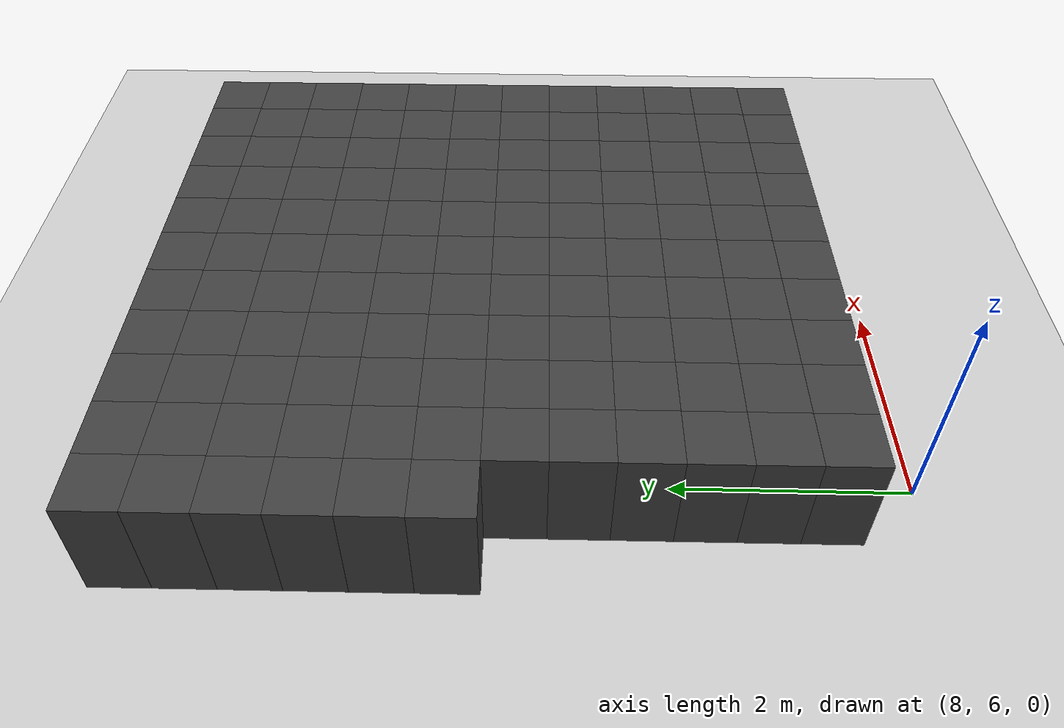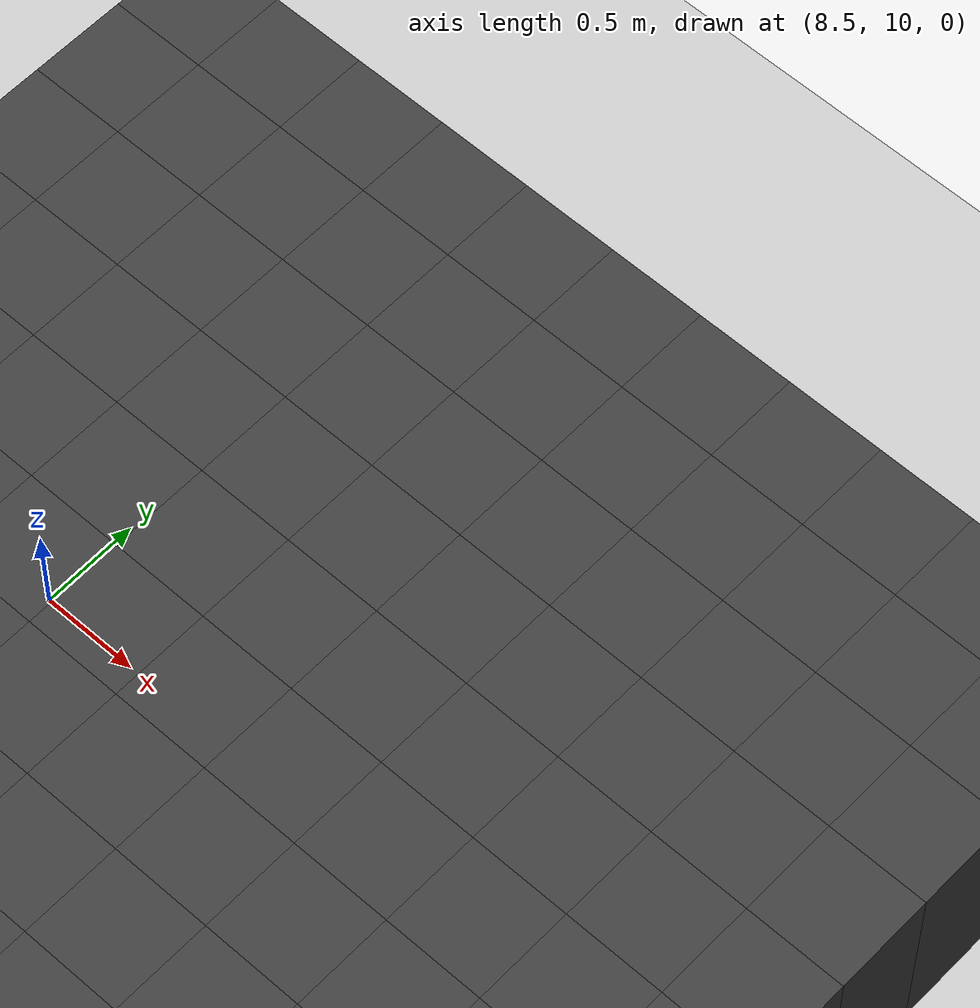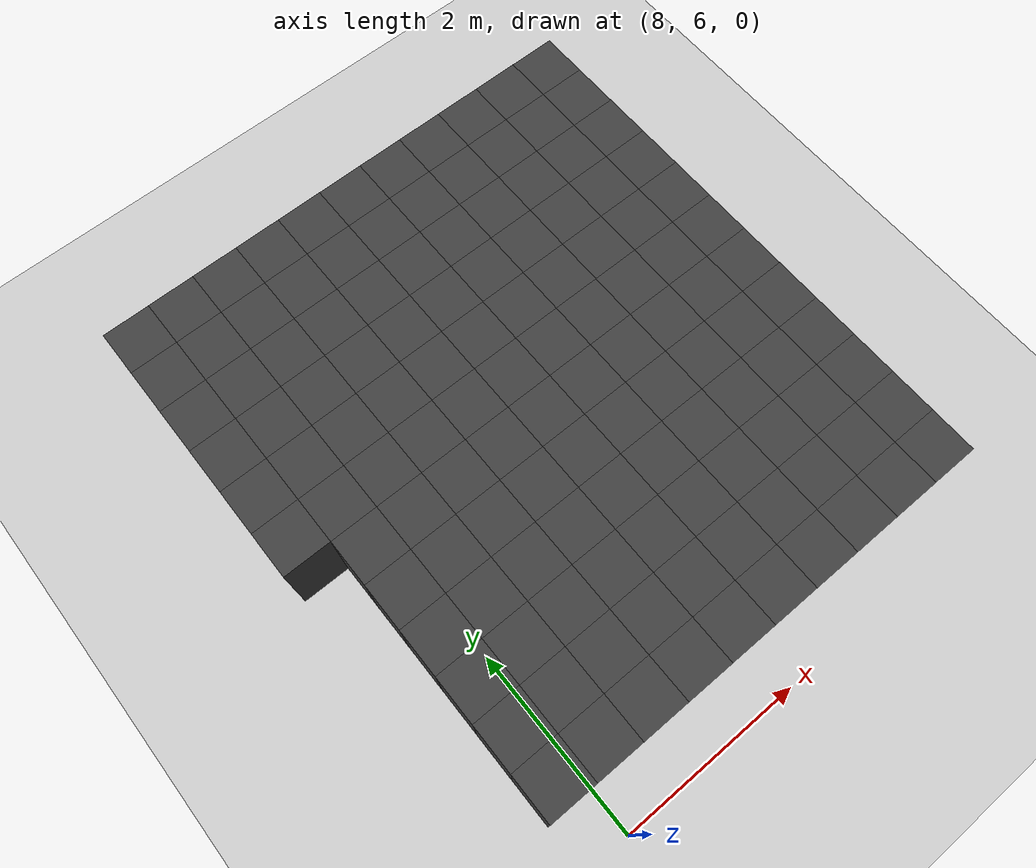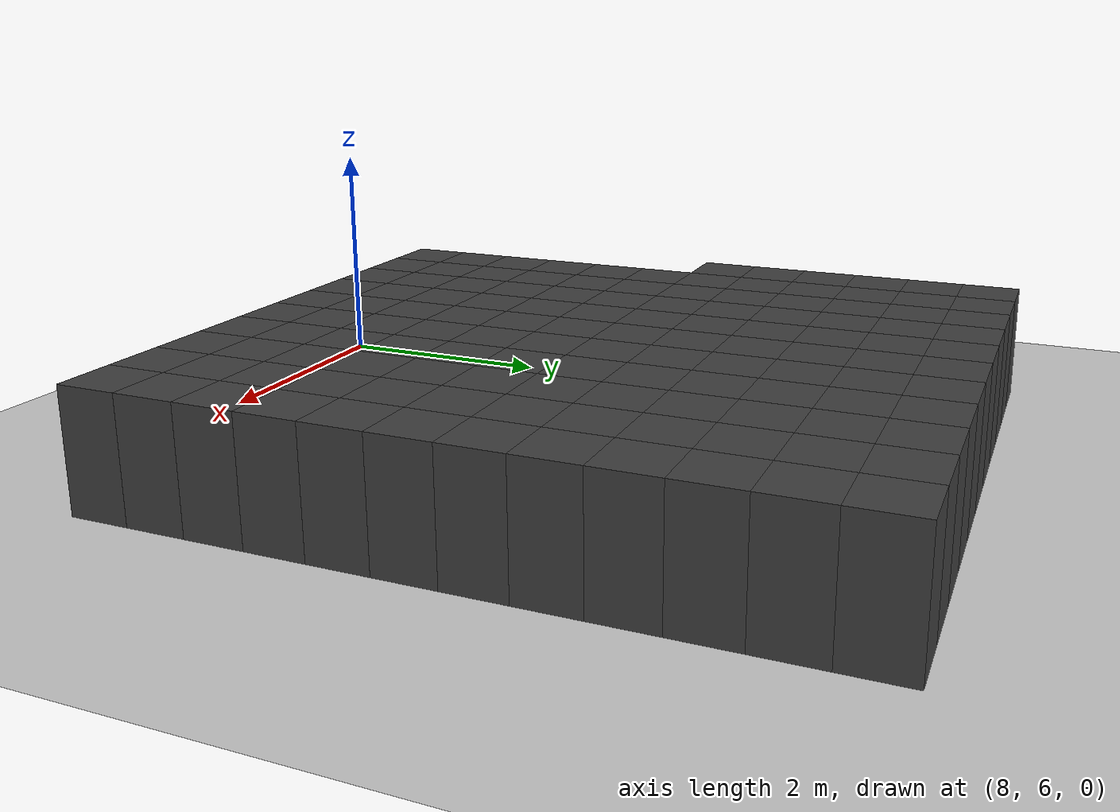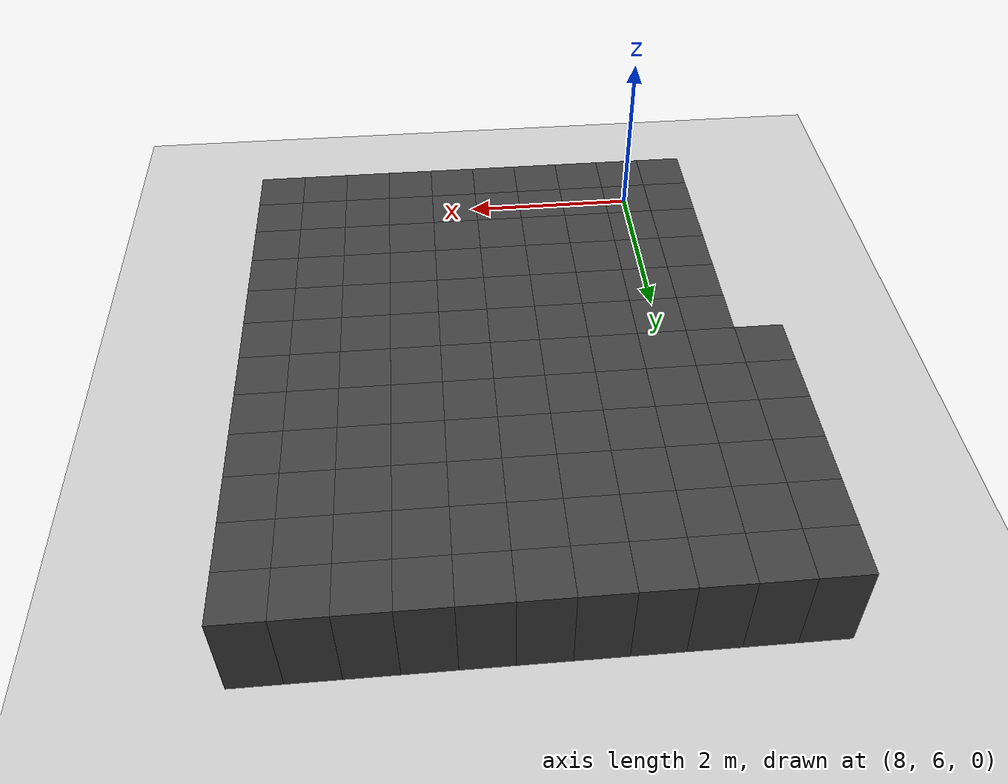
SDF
<sdf version="1.7">
 <world name="map_14495">
  <model name="ground_plane">
   <static>true</static>
   <link name="link">
    <collision name="collision">
     <geometry><plane><normal>0 0 1</normal><size>200 200</size></plane></geometry>
    </collision>
    <visual name="visual">
     <geometry><plane><normal>0 0 1</normal><size>200 200</size></plane></geometry>
     <material><ambient>0.8 0.8 0.8 1</ambient><diffuse>0.8 0.8 0.8 1</diffuse></material>
    </visual>
   </link>
  </model>
  <model name="maze_environment">
   <static>true</static>
   <link name="wall_39">
    <pose>7.250 12.250 0.500 0 0 0</pose>
    <collision name="col"><geometry><box><size>0.5 0.5 1.0</size></box></geometry></collision>
    <visual name="vis">
     <geometry><box><size>0.5 0.5 1.0</size></box></geometry>
     <material><ambient>0.15 0.15 0.15 1</ambient><diffuse>0.25 0.25 0.25 1</diffuse></material>
    </visual>
   </link>
   <link name="wall_40">
    <pose>7.750 12.250 0.500 0 0 0</pose>
    <collision name="col"><geometry><box><size>0.5 0.5 1.0</size></box></geometry></collision>
    <visual name="vis">
     <geometry><box><size>0.5 0.5 1.0</size></box></geometry>
     <material><ambient>0.15 0.15 0.15 1</ambient><diffuse>0.25 0.25 0.25 1</diffuse></material>
    </visual>
   </link>
   <link name="wall_41">
    <pose>8.250 12.250 0.500 0 0 0</pose>
    <collision name="col"><geometry><box><size>0.5 0.5 1.0</size></box></geometry></collision>
    <visual name="vis">
     <geometry><box><size>0.5 0.5 1.0</size></box></geometry>
     <material><ambient>0.15 0.15 0.15 1</ambient><diffuse>0.25 0.25 0.25 1</diffuse></material>
    </visual>
   </link>
   <link name="wall_42">
    <pose>8.750 12.250 0.500 0 0 0</pose>
    <collision name="col"><geometry><box><size>0.5 0.5 1.0</size></box></geometry></collision>
    <visual name="vis">
     <geometry><box><size>0.5 0.5 1.0</size></box></geometry>
     <material><ambient>0.15 0.15 0.15 1</ambient><diffuse>0.25 0.25 0.25 1</diffuse></material>
    </visual>
   </link>
   <link name="wall_43">
    <pose>9.250 12.250 0.500 0 0 0</pose>
    <collision name="col"><geometry><box><size>0.5 0.5 1.0</size></box></geometry></collision>
    <visual name="vis">
     <geometry><box><size>0.5 0.5 1.0</size></box></geometry>
     <material><ambient>0.15 0.15 0.15 1</ambient><diffuse>0.25 0.25 0.25 1</diffuse></material>
    </visual>
   </link>
   <link name="wall_44">
    <pose>9.750 12.250 0.500 0 0 0</pose>
    <collision name="col"><geometry><box><size>0.5 0.5 1.0</size></box></geometry></collision>
    <visual name="vis">
     <geometry><box><size>0.5 0.5 1.0</size></box></geometry>
     <material><ambient>0.15 0.15 0.15 1</ambient><diffuse>0.25 0.25 0.25 1</diffuse></material>
    </visual>
   </link>
   <link name="wall_45">
    <pose>10.250 12.250 0.500 0 0 0</pose>
    <collision name="col"><geometry><box><size>0.5 0.5 1.0</size></box></geometry></collision>
    <visual name="vis">
     <geometry><box><size>0.5 0.5 1.0</size></box></geometry>
     <material><ambient>0.15 0.15 0.15 1</ambient><diffuse>0.25 0.25 0.25 1</diffuse></material>
    </visual>
   </link>
   <link name="wall_46">
    <pose>10.750 12.250 0.500 0 0 0</pose>
    <collision name="col"><geometry><box><size>0.5 0.5 1.0</size></box></geometry></collision>
    <visual name="vis">
     <geometry><box><size>0.5 0.5 1.0</size></box></geometry>
     <material><ambient>0.15 0.15 0.15 1</ambient><diffuse>0.25 0.25 0.25 1</diffuse></material>
    </visual>
   </link>
   <link name="wall_47">
    <pose>11.250 12.250 0.500 0 0 0</pose>
    <collision name="col"><geometry><box><size>0.5 0.5 1.0</size></box></geometry></collision>
    <visual name="vis">
     <geometry><box><size>0.5 0.5 1.0</size></box></geometry>
     <material><ambient>0.15 0.15 0.15 1</ambient><diffuse>0.25 0.25 0.25 1</diffuse></material>
    </visual>
   </link>
   <link name="wall_48">
    <pose>11.750 12.250 0.500 0 0 0</pose>
    <collision name="col"><geometry><box><size>0.5 0.5 1.0</size></box></geometry></collision>
    <visual name="vis">
     <geometry><box><size>0.5 0.5 1.0</size></box></geometry>
     <material><ambient>0.15 0.15 0.15 1</ambient><diffuse>0.25 0.25 0.25 1</diffuse></material>
    </visual>
   </link>
   <link name="wall_49">
    <pose>12.250 12.250 0.500 0 0 0</pose>
    <collision name="col"><geometry><box><size>0.5 0.5 1.0</size></box></geometry></collision>
    <visual name="vis">
     <geometry><box><size>0.5 0.5 1.0</size></box></geometry>
     <material><ambient>0.15 0.15 0.15 1</ambient><diffuse>0.25 0.25 0.25 1</diffuse></material>
    </visual>
   </link>
   <link name="wall_86">
    <pose>7.250 11.750 0.500 0 0 0</pose>
    <collision name="col"><geometry><box><size>0.5 0.5 1.0</size></box></geometry></collision>
    <visual name="vis">
     <geometry><box><size>0.5 0.5 1.0</size></box></geometry>
     <material><ambient>0.15 0.15 0.15 1</ambient><diffuse>0.25 0.25 0.25 1</diffuse></material>
    </visual>
   </link>
   <link name="wall_87">
    <pose>7.750 11.750 0.500 0 0 0</pose>
    <collision name="col"><geometry><box><size>0.5 0.5 1.0</size></box></geometry></collision>
    <visual name="vis">
     <geometry><box><size>0.5 0.5 1.0</size></box></geometry>
     <material><ambient>0.15 0.15 0.15 1</ambient><diffuse>0.25 0.25 0.25 1</diffuse></material>
    </visual>
   </link>
   <link name="wall_88">
    <pose>8.250 11.750 0.500 0 0 0</pose>
    <collision name="col"><geometry><box><size>0.5 0.5 1.0</size></box></geometry></collision>
    <visual name="vis">
     <geometry><box><size>0.5 0.5 1.0</size></box></geometry>
     <material><ambient>0.15 0.15 0.15 1</ambient><diffuse>0.25 0.25 0.25 1</diffuse></material>
    </visual>
   </link>
   <link name="wall_89">
    <pose>8.750 11.750 0.500 0 0 0</pose>
    <collision name="col"><geometry><box><size>0.5 0.5 1.0</size></box></geometry></collision>
    <visual name="vis">
     <geometry><box><size>0.5 0.5 1.0</size></box></geometry>
     <material><ambient>0.15 0.15 0.15 1</ambient><diffuse>0.25 0.25 0.25 1</diffuse></material>
    </visual>
   </link>
   <link name="wall_90">
    <pose>9.250 11.750 0.500 0 0 0</pose>
    <collision name="col"><geometry><box><size>0.5 0.5 1.0</size></box></geometry></collision>
    <visual name="vis">
     <geometry><box><size>0.5 0.5 1.0</size></box></geometry>
     <material><ambient>0.15 0.15 0.15 1</ambient><diffuse>0.25 0.25 0.25 1</diffuse></material>
    </visual>
   </link>
   <link name="wall_91">
    <pose>9.750 11.750 0.500 0 0 0</pose>
    <collision name="col"><geometry><box><size>0.5 0.5 1.0</size></box></geometry></collision>
    <visual name="vis">
     <geometry><box><size>0.5 0.5 1.0</size></box></geometry>
     <material><ambient>0.15 0.15 0.15 1</ambient><diffuse>0.25 0.25 0.25 1</diffuse></material>
    </visual>
   </link>
   <link name="wall_92">
    <pose>10.250 11.750 0.500 0 0 0</pose>
    <collision name="col"><geometry><box><size>0.5 0.5 1.0</size></box></geometry></collision>
    <visual name="vis">
     <geometry><box><size>0.5 0.5 1.0</size></box></geometry>
     <material><ambient>0.15 0.15 0.15 1</ambient><diffuse>0.25 0.25 0.25 1</diffuse></material>
    </visual>
   </link>
   <link name="wall_93">
    <pose>10.750 11.750 0.500 0 0 0</pose>
    <collision name="col"><geometry><box><size>0.5 0.5 1.0</size></box></geometry></collision>
    <visual name="vis">
     <geometry><box><size>0.5 0.5 1.0</size></box></geometry>
     <material><ambient>0.15 0.15 0.15 1</ambient><diffuse>0.25 0.25 0.25 1</diffuse></material>
    </visual>
   </link>
   <link name="wall_94">
    <pose>11.250 11.750 0.500 0 0 0</pose>
    <collision name="col"><geometry><box><size>0.5 0.5 1.0</size></box></geometry></collision>
    <visual name="vis">
     <geometry><box><size>0.5 0.5 1.0</size></box></geometry>
     <material><ambient>0.15 0.15 0.15 1</ambient><diffuse>0.25 0.25 0.25 1</diffuse></material>
    </visual>
   </link>
   <link name="wall_95">
    <pose>11.750 11.750 0.500 0 0 0</pose>
    <collision name="col"><geometry><box><size>0.5 0.5 1.0</size></box></geometry></collision>
    <visual name="vis">
     <geometry><box><size>0.5 0.5 1.0</size></box></geometry>
     <material><ambient>0.15 0.15 0.15 1</ambient><diffuse>0.25 0.25 0.25 1</diffuse></material>
    </visual>
   </link>
   <link name="wall_96">
    <pose>12.250 11.750 0.500 0 0 0</pose>
    <collision name="col"><geometry><box><size>0.5 0.5 1.0</size></box></geometry></collision>
    <visual name="vis">
     <geometry><box><size>0.5 0.5 1.0</size></box></geometry>
     <material><ambient>0.15 0.15 0.15 1</ambient><diffuse>0.25 0.25 0.25 1</diffuse></material>
    </visual>
   </link>
   <link name="wall_133">
    <pose>7.250 11.250 0.500 0 0 0</pose>
    <collision name="col"><geometry><box><size>0.5 0.5 1.0</size></box></geometry></collision>
    <visual name="vis">
     <geometry><box><size>0.5 0.5 1.0</size></box></geometry>
     <material><ambient>0.15 0.15 0.15 1</ambient><diffuse>0.25 0.25 0.25 1</diffuse></material>
    </visual>
   </link>
   <link name="wall_134">
    <pose>7.750 11.250 0.500 0 0 0</pose>
    <collision name="col"><geometry><box><size>0.5 0.5 1.0</size></box></geometry></collision>
    <visual name="vis">
     <geometry><box><size>0.5 0.5 1.0</size></box></geometry>
     <material><ambient>0.15 0.15 0.15 1</ambient><diffuse>0.25 0.25 0.25 1</diffuse></material>
    </visual>
   </link>
   <link name="wall_135">
    <pose>8.250 11.250 0.500 0 0 0</pose>
    <collision name="col"><geometry><box><size>0.5 0.5 1.0</size></box></geometry></collision>
    <visual name="vis">
     <geometry><box><size>0.5 0.5 1.0</size></box></geometry>
     <material><ambient>0.15 0.15 0.15 1</ambient><diffuse>0.25 0.25 0.25 1</diffuse></material>
    </visual>
   </link>
   <link name="wall_136">
    <pose>8.750 11.250 0.500 0 0 0</pose>
    <collision name="col"><geometry><box><size>0.5 0.5 1.0</size></box></geometry></collision>
    <visual name="vis">
     <geometry><box><size>0.5 0.5 1.0</size></box></geometry>
     <material><ambient>0.15 0.15 0.15 1</ambient><diffuse>0.25 0.25 0.25 1</diffuse></material>
    </visual>
   </link>
   <link name="wall_137">
    <pose>9.250 11.250 0.500 0 0 0</pose>
    <collision name="col"><geometry><box><size>0.5 0.5 1.0</size></box></geometry></collision>
    <visual name="vis">
     <geometry><box><size>0.5 0.5 1.0</size></box></geometry>
     <material><ambient>0.15 0.15 0.15 1</ambient><diffuse>0.25 0.25 0.25 1</diffuse></material>
    </visual>
   </link>
   <link name="wall_138">
    <pose>9.750 11.250 0.500 0 0 0</pose>
    <collision name="col"><geometry><box><size>0.5 0.5 1.0</size></box></geometry></collision>
    <visual name="vis">
     <geometry><box><size>0.5 0.5 1.0</size></box></geometry>
     <material><ambient>0.15 0.15 0.15 1</ambient><diffuse>0.25 0.25 0.25 1</diffuse></material>
    </visual>
   </link>
   <link name="wall_139">
    <pose>10.250 11.250 0.500 0 0 0</pose>
    <collision name="col"><geometry><box><size>0.5 0.5 1.0</size></box></geometry></collision>
    <visual name="vis">
     <geometry><box><size>0.5 0.5 1.0</size></box></geometry>
     <material><ambient>0.15 0.15 0.15 1</ambient><diffuse>0.25 0.25 0.25 1</diffuse></material>
    </visual>
   </link>
   <link name="wall_140">
    <pose>10.750 11.250 0.500 0 0 0</pose>
    <collision name="col"><geometry><box><size>0.5 0.5 1.0</size></box></geometry></collision>
    <visual name="vis">
     <geometry><box><size>0.5 0.5 1.0</size></box></geometry>
     <material><ambient>0.15 0.15 0.15 1</ambient><diffuse>0.25 0.25 0.25 1</diffuse></material>
    </visual>
   </link>
   <link name="wall_141">
    <pose>11.250 11.250 0.500 0 0 0</pose>
    <collision name="col"><geometry><box><size>0.5 0.5 1.0</size></box></geometry></collision>
    <visual name="vis">
     <geometry><box><size>0.5 0.5 1.0</size></box></geometry>
     <material><ambient>0.15 0.15 0.15 1</ambient><diffuse>0.25 0.25 0.25 1</diffuse></material>
    </visual>
   </link>
   <link name="wall_142">
    <pose>11.750 11.250 0.500 0 0 0</pose>
    <collision name="col"><geometry><box><size>0.5 0.5 1.0</size></box></geometry></collision>
    <visual name="vis">
     <geometry><box><size>0.5 0.5 1.0</size></box></geometry>
     <material><ambient>0.15 0.15 0.15 1</ambient><diffuse>0.25 0.25 0.25 1</diffuse></material>
    </visual>
   </link>
   <link name="wall_143">
    <pose>12.250 11.250 0.500 0 0 0</pose>
    <collision name="col"><geometry><box><size>0.5 0.5 1.0</size></box></geometry></collision>
    <visual name="vis">
     <geometry><box><size>0.5 0.5 1.0</size></box></geometry>
     <material><ambient>0.15 0.15 0.15 1</ambient><diffuse>0.25 0.25 0.25 1</diffuse></material>
    </visual>
   </link>
   <link name="wall_172">
    <pose>7.250 10.750 0.500 0 0 0</pose>
    <collision name="col"><geometry><box><size>0.5 0.5 1.0</size></box></geometry></collision>
    <visual name="vis">
     <geometry><box><size>0.5 0.5 1.0</size></box></geometry>
     <material><ambient>0.15 0.15 0.15 1</ambient><diffuse>0.25 0.25 0.25 1</diffuse></material>
    </visual>
   </link>
   <link name="wall_173">
    <pose>7.750 10.750 0.500 0 0 0</pose>
    <collision name="col"><geometry><box><size>0.5 0.5 1.0</size></box></geometry></collision>
    <visual name="vis">
     <geometry><box><size>0.5 0.5 1.0</size></box></geometry>
     <material><ambient>0.15 0.15 0.15 1</ambient><diffuse>0.25 0.25 0.25 1</diffuse></material>
    </visual>
   </link>
   <link name="wall_174">
    <pose>8.250 10.750 0.500 0 0 0</pose>
    <collision name="col"><geometry><box><size>0.5 0.5 1.0</size></box></geometry></collision>
    <visual name="vis">
     <geometry><box><size>0.5 0.5 1.0</size></box></geometry>
     <material><ambient>0.15 0.15 0.15 1</ambient><diffuse>0.25 0.25 0.25 1</diffuse></material>
    </visual>
   </link>
   <link name="wall_175">
    <pose>8.750 10.750 0.500 0 0 0</pose>
    <collision name="col"><geometry><box><size>0.5 0.5 1.0</size></box></geometry></collision>
    <visual name="vis">
     <geometry><box><size>0.5 0.5 1.0</size></box></geometry>
     <material><ambient>0.15 0.15 0.15 1</ambient><diffuse>0.25 0.25 0.25 1</diffuse></material>
    </visual>
   </link>
   <link name="wall_176">
    <pose>9.250 10.750 0.500 0 0 0</pose>
    <collision name="col"><geometry><box><size>0.5 0.5 1.0</size></box></geometry></collision>
    <visual name="vis">
     <geometry><box><size>0.5 0.5 1.0</size></box></geometry>
     <material><ambient>0.15 0.15 0.15 1</ambient><diffuse>0.25 0.25 0.25 1</diffuse></material>
    </visual>
   </link>
   <link name="wall_177">
    <pose>9.750 10.750 0.500 0 0 0</pose>
    <collision name="col"><geometry><box><size>0.5 0.5 1.0</size></box></geometry></collision>
    <visual name="vis">
     <geometry><box><size>0.5 0.5 1.0</size></box></geometry>
     <material><ambient>0.15 0.15 0.15 1</ambient><diffuse>0.25 0.25 0.25 1</diffuse></material>
    </visual>
   </link>
   <link name="wall_178">
    <pose>10.250 10.750 0.500 0 0 0</pose>
    <collision name="col"><geometry><box><size>0.5 0.5 1.0</size></box></geometry></collision>
    <visual name="vis">
     <geometry><box><size>0.5 0.5 1.0</size></box></geometry>
     <material><ambient>0.15 0.15 0.15 1</ambient><diffuse>0.25 0.25 0.25 1</diffuse></material>
    </visual>
   </link>
   <link name="wall_179">
    <pose>10.750 10.750 0.500 0 0 0</pose>
    <collision name="col"><geometry><box><size>0.5 0.5 1.0</size></box></geometry></collision>
    <visual name="vis">
     <geometry><box><size>0.5 0.5 1.0</size></box></geometry>
     <material><ambient>0.15 0.15 0.15 1</ambient><diffuse>0.25 0.25 0.25 1</diffuse></material>
    </visual>
   </link>
   <link name="wall_180">
    <pose>11.250 10.750 0.500 0 0 0</pose>
    <collision name="col"><geometry><box><size>0.5 0.5 1.0</size></box></geometry></collision>
    <visual name="vis">
     <geometry><box><size>0.5 0.5 1.0</size></box></geometry>
     <material><ambient>0.15 0.15 0.15 1</ambient><diffuse>0.25 0.25 0.25 1</diffuse></material>
    </visual>
   </link>
   <link name="wall_181">
    <pose>11.750 10.750 0.500 0 0 0</pose>
    <collision name="col"><geometry><box><size>0.5 0.5 1.0</size></box></geometry></collision>
    <visual name="vis">
     <geometry><box><size>0.5 0.5 1.0</size></box></geometry>
     <material><ambient>0.15 0.15 0.15 1</ambient><diffuse>0.25 0.25 0.25 1</diffuse></material>
    </visual>
   </link>
   <link name="wall_182">
    <pose>12.250 10.750 0.500 0 0 0</pose>
    <collision name="col"><geometry><box><size>0.5 0.5 1.0</size></box></geometry></collision>
    <visual name="vis">
     <geometry><box><size>0.5 0.5 1.0</size></box></geometry>
     <material><ambient>0.15 0.15 0.15 1</ambient><diffuse>0.25 0.25 0.25 1</diffuse></material>
    </visual>
   </link>
   <link name="wall_213">
    <pose>7.250 10.250 0.500 0 0 0</pose>
    <collision name="col"><geometry><box><size>0.5 0.5 1.0</size></box></geometry></collision>
    <visual name="vis">
     <geometry><box><size>0.5 0.5 1.0</size></box></geometry>
     <material><ambient>0.15 0.15 0.15 1</ambient><diffuse>0.25 0.25 0.25 1</diffuse></material>
    </visual>
   </link>
   <link name="wall_214">
    <pose>7.750 10.250 0.500 0 0 0</pose>
    <collision name="col"><geometry><box><size>0.5 0.5 1.0</size></box></geometry></collision>
    <visual name="vis">
     <geometry><box><size>0.5 0.5 1.0</size></box></geometry>
     <material><ambient>0.15 0.15 0.15 1</ambient><diffuse>0.25 0.25 0.25 1</diffuse></material>
    </visual>
   </link>
   <link name="wall_215">
    <pose>8.250 10.250 0.500 0 0 0</pose>
    <collision name="col"><geometry><box><size>0.5 0.5 1.0</size></box></geometry></collision>
    <visual name="vis">
     <geometry><box><size>0.5 0.5 1.0</size></box></geometry>
     <material><ambient>0.15 0.15 0.15 1</ambient><diffuse>0.25 0.25 0.25 1</diffuse></material>
    </visual>
   </link>
   <link name="wall_216">
    <pose>8.750 10.250 0.500 0 0 0</pose>
    <collision name="col"><geometry><box><size>0.5 0.5 1.0</size></box></geometry></collision>
    <visual name="vis">
     <geometry><box><size>0.5 0.5 1.0</size></box></geometry>
     <material><ambient>0.15 0.15 0.15 1</ambient><diffuse>0.25 0.25 0.25 1</diffuse></material>
    </visual>
   </link>
   <link name="wall_217">
    <pose>9.250 10.250 0.500 0 0 0</pose>
    <collision name="col"><geometry><box><size>0.5 0.5 1.0</size></box></geometry></collision>
    <visual name="vis">
     <geometry><box><size>0.5 0.5 1.0</size></box></geometry>
     <material><ambient>0.15 0.15 0.15 1</ambient><diffuse>0.25 0.25 0.25 1</diffuse></material>
    </visual>
   </link>
   <link name="wall_218">
    <pose>9.750 10.250 0.500 0 0 0</pose>
    <collision name="col"><geometry><box><size>0.5 0.5 1.0</size></box></geometry></collision>
    <visual name="vis">
     <geometry><box><size>0.5 0.5 1.0</size></box></geometry>
     <material><ambient>0.15 0.15 0.15 1</ambient><diffuse>0.25 0.25 0.25 1</diffuse></material>
    </visual>
   </link>
   <link name="wall_219">
    <pose>10.250 10.250 0.500 0 0 0</pose>
    <collision name="col"><geometry><box><size>0.5 0.5 1.0</size></box></geometry></collision>
    <visual name="vis">
     <geometry><box><size>0.5 0.5 1.0</size></box></geometry>
     <material><ambient>0.15 0.15 0.15 1</ambient><diffuse>0.25 0.25 0.25 1</diffuse></material>
    </visual>
   </link>
   <link name="wall_220">
    <pose>10.750 10.250 0.500 0 0 0</pose>
    <collision name="col"><geometry><box><size>0.5 0.5 1.0</size></box></geometry></collision>
    <visual name="vis">
     <geometry><box><size>0.5 0.5 1.0</size></box></geometry>
     <material><ambient>0.15 0.15 0.15 1</ambient><diffuse>0.25 0.25 0.25 1</diffuse></material>
    </visual>
   </link>
   <link name="wall_221">
    <pose>11.250 10.250 0.500 0 0 0</pose>
    <collision name="col"><geometry><box><size>0.5 0.5 1.0</size></box></geometry></collision>
    <visual name="vis">
     <geometry><box><size>0.5 0.5 1.0</size></box></geometry>
     <material><ambient>0.15 0.15 0.15 1</ambient><diffuse>0.25 0.25 0.25 1</diffuse></material>
    </visual>
   </link>
   <link name="wall_222">
    <pose>11.750 10.250 0.500 0 0 0</pose>
    <collision name="col"><geometry><box><size>0.5 0.5 1.0</size></box></geometry></collision>
    <visual name="vis">
     <geometry><box><size>0.5 0.5 1.0</size></box></geometry>
     <material><ambient>0.15 0.15 0.15 1</ambient><diffuse>0.25 0.25 0.25 1</diffuse></material>
    </visual>
   </link>
   <link name="wall_223">
    <pose>12.250 10.250 0.500 0 0 0</pose>
    <collision name="col"><geometry><box><size>0.5 0.5 1.0</size></box></geometry></collision>
    <visual name="vis">
     <geometry><box><size>0.5 0.5 1.0</size></box></geometry>
     <material><ambient>0.15 0.15 0.15 1</ambient><diffuse>0.25 0.25 0.25 1</diffuse></material>
    </visual>
   </link>
   <link name="wall_254">
    <pose>7.250 9.750 0.500 0 0 0</pose>
    <collision name="col"><geometry><box><size>0.5 0.5 1.0</size></box></geometry></collision>
    <visual name="vis">
     <geometry><box><size>0.5 0.5 1.0</size></box></geometry>
     <material><ambient>0.15 0.15 0.15 1</ambient><diffuse>0.25 0.25 0.25 1</diffuse></material>
    </visual>
   </link>
   <link name="wall_255">
    <pose>7.750 9.750 0.500 0 0 0</pose>
    <collision name="col"><geometry><box><size>0.5 0.5 1.0</size></box></geometry></collision>
    <visual name="vis">
     <geometry><box><size>0.5 0.5 1.0</size></box></geometry>
     <material><ambient>0.15 0.15 0.15 1</ambient><diffuse>0.25 0.25 0.25 1</diffuse></material>
    </visual>
   </link>
   <link name="wall_256">
    <pose>8.250 9.750 0.500 0 0 0</pose>
    <collision name="col"><geometry><box><size>0.5 0.5 1.0</size></box></geometry></collision>
    <visual name="vis">
     <geometry><box><size>0.5 0.5 1.0</size></box></geometry>
     <material><ambient>0.15 0.15 0.15 1</ambient><diffuse>0.25 0.25 0.25 1</diffuse></material>
    </visual>
   </link>
   <link name="wall_257">
    <pose>8.750 9.750 0.500 0 0 0</pose>
    <collision name="col"><geometry><box><size>0.5 0.5 1.0</size></box></geometry></collision>
    <visual name="vis">
     <geometry><box><size>0.5 0.5 1.0</size></box></geometry>
     <material><ambient>0.15 0.15 0.15 1</ambient><diffuse>0.25 0.25 0.25 1</diffuse></material>
    </visual>
   </link>
   <link name="wall_258">
    <pose>9.250 9.750 0.500 0 0 0</pose>
    <collision name="col"><geometry><box><size>0.5 0.5 1.0</size></box></geometry></collision>
    <visual name="vis">
     <geometry><box><size>0.5 0.5 1.0</size></box></geometry>
     <material><ambient>0.15 0.15 0.15 1</ambient><diffuse>0.25 0.25 0.25 1</diffuse></material>
    </visual>
   </link>
   <link name="wall_259">
    <pose>9.750 9.750 0.500 0 0 0</pose>
    <collision name="col"><geometry><box><size>0.5 0.5 1.0</size></box></geometry></collision>
    <visual name="vis">
     <geometry><box><size>0.5 0.5 1.0</size></box></geometry>
     <material><ambient>0.15 0.15 0.15 1</ambient><diffuse>0.25 0.25 0.25 1</diffuse></material>
    </visual>
   </link>
   <link name="wall_260">
    <pose>10.250 9.750 0.500 0 0 0</pose>
    <collision name="col"><geometry><box><size>0.5 0.5 1.0</size></box></geometry></collision>
    <visual name="vis">
     <geometry><box><size>0.5 0.5 1.0</size></box></geometry>
     <material><ambient>0.15 0.15 0.15 1</ambient><diffuse>0.25 0.25 0.25 1</diffuse></material>
    </visual>
   </link>
   <link name="wall_261">
    <pose>10.750 9.750 0.500 0 0 0</pose>
    <collision name="col"><geometry><box><size>0.5 0.5 1.0</size></box></geometry></collision>
    <visual name="vis">
     <geometry><box><size>0.5 0.5 1.0</size></box></geometry>
     <material><ambient>0.15 0.15 0.15 1</ambient><diffuse>0.25 0.25 0.25 1</diffuse></material>
    </visual>
   </link>
   <link name="wall_262">
    <pose>11.250 9.750 0.500 0 0 0</pose>
    <collision name="col"><geometry><box><size>0.5 0.5 1.0</size></box></geometry></collision>
    <visual name="vis">
     <geometry><box><size>0.5 0.5 1.0</size></box></geometry>
     <material><ambient>0.15 0.15 0.15 1</ambient><diffuse>0.25 0.25 0.25 1</diffuse></material>
    </visual>
   </link>
   <link name="wall_263">
    <pose>11.750 9.750 0.500 0 0 0</pose>
    <collision name="col"><geometry><box><size>0.5 0.5 1.0</size></box></geometry></collision>
    <visual name="vis">
     <geometry><box><size>0.5 0.5 1.0</size></box></geometry>
     <material><ambient>0.15 0.15 0.15 1</ambient><diffuse>0.25 0.25 0.25 1</diffuse></material>
    </visual>
   </link>
   <link name="wall_264">
    <pose>12.250 9.750 0.500 0 0 0</pose>
    <collision name="col"><geometry><box><size>0.5 0.5 1.0</size></box></geometry></collision>
    <visual name="vis">
     <geometry><box><size>0.5 0.5 1.0</size></box></geometry>
     <material><ambient>0.15 0.15 0.15 1</ambient><diffuse>0.25 0.25 0.25 1</diffuse></material>
    </visual>
   </link>
   <link name="wall_292">
    <pose>7.750 9.250 0.500 0 0 0</pose>
    <collision name="col"><geometry><box><size>0.5 0.5 1.0</size></box></geometry></collision>
    <visual name="vis">
     <geometry><box><size>0.5 0.5 1.0</size></box></geometry>
     <material><ambient>0.15 0.15 0.15 1</ambient><diffuse>0.25 0.25 0.25 1</diffuse></material>
    </visual>
   </link>
   <link name="wall_293">
    <pose>8.250 9.250 0.500 0 0 0</pose>
    <collision name="col"><geometry><box><size>0.5 0.5 1.0</size></box></geometry></collision>
    <visual name="vis">
     <geometry><box><size>0.5 0.5 1.0</size></box></geometry>
     <material><ambient>0.15 0.15 0.15 1</ambient><diffuse>0.25 0.25 0.25 1</diffuse></material>
    </visual>
   </link>
   <link name="wall_294">
    <pose>8.750 9.250 0.500 0 0 0</pose>
    <collision name="col"><geometry><box><size>0.5 0.5 1.0</size></box></geometry></collision>
    <visual name="vis">
     <geometry><box><size>0.5 0.5 1.0</size></box></geometry>
     <material><ambient>0.15 0.15 0.15 1</ambient><diffuse>0.25 0.25 0.25 1</diffuse></material>
    </visual>
   </link>
   <link name="wall_295">
    <pose>9.250 9.250 0.500 0 0 0</pose>
    <collision name="col"><geometry><box><size>0.5 0.5 1.0</size></box></geometry></collision>
    <visual name="vis">
     <geometry><box><size>0.5 0.5 1.0</size></box></geometry>
     <material><ambient>0.15 0.15 0.15 1</ambient><diffuse>0.25 0.25 0.25 1</diffuse></material>
    </visual>
   </link>
   <link name="wall_296">
    <pose>9.750 9.250 0.500 0 0 0</pose>
    <collision name="col"><geometry><box><size>0.5 0.5 1.0</size></box></geometry></collision>
    <visual name="vis">
     <geometry><box><size>0.5 0.5 1.0</size></box></geometry>
     <material><ambient>0.15 0.15 0.15 1</ambient><diffuse>0.25 0.25 0.25 1</diffuse></material>
    </visual>
   </link>
   <link name="wall_297">
    <pose>10.250 9.250 0.500 0 0 0</pose>
    <collision name="col"><geometry><box><size>0.5 0.5 1.0</size></box></geometry></collision>
    <visual name="vis">
     <geometry><box><size>0.5 0.5 1.0</size></box></geometry>
     <material><ambient>0.15 0.15 0.15 1</ambient><diffuse>0.25 0.25 0.25 1</diffuse></material>
    </visual>
   </link>
   <link name="wall_298">
    <pose>10.750 9.250 0.500 0 0 0</pose>
    <collision name="col"><geometry><box><size>0.5 0.5 1.0</size></box></geometry></collision>
    <visual name="vis">
     <geometry><box><size>0.5 0.5 1.0</size></box></geometry>
     <material><ambient>0.15 0.15 0.15 1</ambient><diffuse>0.25 0.25 0.25 1</diffuse></material>
    </visual>
   </link>
   <link name="wall_299">
    <pose>11.250 9.250 0.500 0 0 0</pose>
    <collision name="col"><geometry><box><size>0.5 0.5 1.0</size></box></geometry></collision>
    <visual name="vis">
     <geometry><box><size>0.5 0.5 1.0</size></box></geometry>
     <material><ambient>0.15 0.15 0.15 1</ambient><diffuse>0.25 0.25 0.25 1</diffuse></material>
    </visual>
   </link>
   <link name="wall_300">
    <pose>11.750 9.250 0.500 0 0 0</pose>
    <collision name="col"><geometry><box><size>0.5 0.5 1.0</size></box></geometry></collision>
    <visual name="vis">
     <geometry><box><size>0.5 0.5 1.0</size></box></geometry>
     <material><ambient>0.15 0.15 0.15 1</ambient><diffuse>0.25 0.25 0.25 1</diffuse></material>
    </visual>
   </link>
   <link name="wall_301">
    <pose>12.250 9.250 0.500 0 0 0</pose>
    <collision name="col"><geometry><box><size>0.5 0.5 1.0</size></box></geometry></collision>
    <visual name="vis">
     <geometry><box><size>0.5 0.5 1.0</size></box></geometry>
     <material><ambient>0.15 0.15 0.15 1</ambient><diffuse>0.25 0.25 0.25 1</diffuse></material>
    </visual>
   </link>
   <link name="wall_330">
    <pose>7.750 8.750 0.500 0 0 0</pose>
    <collision name="col"><geometry><box><size>0.5 0.5 1.0</size></box></geometry></collision>
    <visual name="vis">
     <geometry><box><size>0.5 0.5 1.0</size></box></geometry>
     <material><ambient>0.15 0.15 0.15 1</ambient><diffuse>0.25 0.25 0.25 1</diffuse></material>
    </visual>
   </link>
   <link name="wall_331">
    <pose>8.250 8.750 0.500 0 0 0</pose>
    <collision name="col"><geometry><box><size>0.5 0.5 1.0</size></box></geometry></collision>
    <visual name="vis">
     <geometry><box><size>0.5 0.5 1.0</size></box></geometry>
     <material><ambient>0.15 0.15 0.15 1</ambient><diffuse>0.25 0.25 0.25 1</diffuse></material>
    </visual>
   </link>
   <link name="wall_332">
    <pose>8.750 8.750 0.500 0 0 0</pose>
    <collision name="col"><geometry><box><size>0.5 0.5 1.0</size></box></geometry></collision>
    <visual name="vis">
     <geometry><box><size>0.5 0.5 1.0</size></box></geometry>
     <material><ambient>0.15 0.15 0.15 1</ambient><diffuse>0.25 0.25 0.25 1</diffuse></material>
    </visual>
   </link>
   <link name="wall_333">
    <pose>9.250 8.750 0.500 0 0 0</pose>
    <collision name="col"><geometry><box><size>0.5 0.5 1.0</size></box></geometry></collision>
    <visual name="vis">
     <geometry><box><size>0.5 0.5 1.0</size></box></geometry>
     <material><ambient>0.15 0.15 0.15 1</ambient><diffuse>0.25 0.25 0.25 1</diffuse></material>
    </visual>
   </link>
   <link name="wall_334">
    <pose>9.750 8.750 0.500 0 0 0</pose>
    <collision name="col"><geometry><box><size>0.5 0.5 1.0</size></box></geometry></collision>
    <visual name="vis">
     <geometry><box><size>0.5 0.5 1.0</size></box></geometry>
     <material><ambient>0.15 0.15 0.15 1</ambient><diffuse>0.25 0.25 0.25 1</diffuse></material>
    </visual>
   </link>
   <link name="wall_335">
    <pose>10.250 8.750 0.500 0 0 0</pose>
    <collision name="col"><geometry><box><size>0.5 0.5 1.0</size></box></geometry></collision>
    <visual name="vis">
     <geometry><box><size>0.5 0.5 1.0</size></box></geometry>
     <material><ambient>0.15 0.15 0.15 1</ambient><diffuse>0.25 0.25 0.25 1</diffuse></material>
    </visual>
   </link>
   <link name="wall_336">
    <pose>10.750 8.750 0.500 0 0 0</pose>
    <collision name="col"><geometry><box><size>0.5 0.5 1.0</size></box></geometry></collision>
    <visual name="vis">
     <geometry><box><size>0.5 0.5 1.0</size></box></geometry>
     <material><ambient>0.15 0.15 0.15 1</ambient><diffuse>0.25 0.25 0.25 1</diffuse></material>
    </visual>
   </link>
   <link name="wall_337">
    <pose>11.250 8.750 0.500 0 0 0</pose>
    <collision name="col"><geometry><box><size>0.5 0.5 1.0</size></box></geometry></collision>
    <visual name="vis">
     <geometry><box><size>0.5 0.5 1.0</size></box></geometry>
     <material><ambient>0.15 0.15 0.15 1</ambient><diffuse>0.25 0.25 0.25 1</diffuse></material>
    </visual>
   </link>
   <link name="wall_338">
    <pose>11.750 8.750 0.500 0 0 0</pose>
    <collision name="col"><geometry><box><size>0.5 0.5 1.0</size></box></geometry></collision>
    <visual name="vis">
     <geometry><box><size>0.5 0.5 1.0</size></box></geometry>
     <material><ambient>0.15 0.15 0.15 1</ambient><diffuse>0.25 0.25 0.25 1</diffuse></material>
    </visual>
   </link>
   <link name="wall_339">
    <pose>12.250 8.750 0.500 0 0 0</pose>
    <collision name="col"><geometry><box><size>0.5 0.5 1.0</size></box></geometry></collision>
    <visual name="vis">
     <geometry><box><size>0.5 0.5 1.0</size></box></geometry>
     <material><ambient>0.15 0.15 0.15 1</ambient><diffuse>0.25 0.25 0.25 1</diffuse></material>
    </visual>
   </link>
   <link name="wall_368">
    <pose>7.750 8.250 0.500 0 0 0</pose>
    <collision name="col"><geometry><box><size>0.5 0.5 1.0</size></box></geometry></collision>
    <visual name="vis">
     <geometry><box><size>0.5 0.5 1.0</size></box></geometry>
     <material><ambient>0.15 0.15 0.15 1</ambient><diffuse>0.25 0.25 0.25 1</diffuse></material>
    </visual>
   </link>
   <link name="wall_369">
    <pose>8.250 8.250 0.500 0 0 0</pose>
    <collision name="col"><geometry><box><size>0.5 0.5 1.0</size></box></geometry></collision>
    <visual name="vis">
     <geometry><box><size>0.5 0.5 1.0</size></box></geometry>
     <material><ambient>0.15 0.15 0.15 1</ambient><diffuse>0.25 0.25 0.25 1</diffuse></material>
    </visual>
   </link>
   <link name="wall_370">
    <pose>8.750 8.250 0.500 0 0 0</pose>
    <collision name="col"><geometry><box><size>0.5 0.5 1.0</size></box></geometry></collision>
    <visual name="vis">
     <geometry><box><size>0.5 0.5 1.0</size></box></geometry>
     <material><ambient>0.15 0.15 0.15 1</ambient><diffuse>0.25 0.25 0.25 1</diffuse></material>
    </visual>
   </link>
   <link name="wall_371">
    <pose>9.250 8.250 0.500 0 0 0</pose>
    <collision name="col"><geometry><box><size>0.5 0.5 1.0</size></box></geometry></collision>
    <visual name="vis">
     <geometry><box><size>0.5 0.5 1.0</size></box></geometry>
     <material><ambient>0.15 0.15 0.15 1</ambient><diffuse>0.25 0.25 0.25 1</diffuse></material>
    </visual>
   </link>
   <link name="wall_372">
    <pose>9.750 8.250 0.500 0 0 0</pose>
    <collision name="col"><geometry><box><size>0.5 0.5 1.0</size></box></geometry></collision>
    <visual name="vis">
     <geometry><box><size>0.5 0.5 1.0</size></box></geometry>
     <material><ambient>0.15 0.15 0.15 1</ambient><diffuse>0.25 0.25 0.25 1</diffuse></material>
    </visual>
   </link>
   <link name="wall_373">
    <pose>10.250 8.250 0.500 0 0 0</pose>
    <collision name="col"><geometry><box><size>0.5 0.5 1.0</size></box></geometry></collision>
    <visual name="vis">
     <geometry><box><size>0.5 0.5 1.0</size></box></geometry>
     <material><ambient>0.15 0.15 0.15 1</ambient><diffuse>0.25 0.25 0.25 1</diffuse></material>
    </visual>
   </link>
   <link name="wall_374">
    <pose>10.750 8.250 0.500 0 0 0</pose>
    <collision name="col"><geometry><box><size>0.5 0.5 1.0</size></box></geometry></collision>
    <visual name="vis">
     <geometry><box><size>0.5 0.5 1.0</size></box></geometry>
     <material><ambient>0.15 0.15 0.15 1</ambient><diffuse>0.25 0.25 0.25 1</diffuse></material>
    </visual>
   </link>
   <link name="wall_375">
    <pose>11.250 8.250 0.500 0 0 0</pose>
    <collision name="col"><geometry><box><size>0.5 0.5 1.0</size></box></geometry></collision>
    <visual name="vis">
     <geometry><box><size>0.5 0.5 1.0</size></box></geometry>
     <material><ambient>0.15 0.15 0.15 1</ambient><diffuse>0.25 0.25 0.25 1</diffuse></material>
    </visual>
   </link>
   <link name="wall_376">
    <pose>11.750 8.250 0.500 0 0 0</pose>
    <collision name="col"><geometry><box><size>0.5 0.5 1.0</size></box></geometry></collision>
    <visual name="vis">
     <geometry><box><size>0.5 0.5 1.0</size></box></geometry>
     <material><ambient>0.15 0.15 0.15 1</ambient><diffuse>0.25 0.25 0.25 1</diffuse></material>
    </visual>
   </link>
   <link name="wall_377">
    <pose>12.250 8.250 0.500 0 0 0</pose>
    <collision name="col"><geometry><box><size>0.5 0.5 1.0</size></box></geometry></collision>
    <visual name="vis">
     <geometry><box><size>0.5 0.5 1.0</size></box></geometry>
     <material><ambient>0.15 0.15 0.15 1</ambient><diffuse>0.25 0.25 0.25 1</diffuse></material>
    </visual>
   </link>
   <link name="wall_399">
    <pose>7.750 7.750 0.500 0 0 0</pose>
    <collision name="col"><geometry><box><size>0.5 0.5 1.0</size></box></geometry></collision>
    <visual name="vis">
     <geometry><box><size>0.5 0.5 1.0</size></box></geometry>
     <material><ambient>0.15 0.15 0.15 1</ambient><diffuse>0.25 0.25 0.25 1</diffuse></material>
    </visual>
   </link>
   <link name="wall_400">
    <pose>8.250 7.750 0.500 0 0 0</pose>
    <collision name="col"><geometry><box><size>0.5 0.5 1.0</size></box></geometry></collision>
    <visual name="vis">
     <geometry><box><size>0.5 0.5 1.0</size></box></geometry>
     <material><ambient>0.15 0.15 0.15 1</ambient><diffuse>0.25 0.25 0.25 1</diffuse></material>
    </visual>
   </link>
   <link name="wall_401">
    <pose>8.750 7.750 0.500 0 0 0</pose>
    <collision name="col"><geometry><box><size>0.5 0.5 1.0</size></box></geometry></collision>
    <visual name="vis">
     <geometry><box><size>0.5 0.5 1.0</size></box></geometry>
     <material><ambient>0.15 0.15 0.15 1</ambient><diffuse>0.25 0.25 0.25 1</diffuse></material>
    </visual>
   </link>
   <link name="wall_402">
    <pose>9.250 7.750 0.500 0 0 0</pose>
    <collision name="col"><geometry><box><size>0.5 0.5 1.0</size></box></geometry></collision>
    <visual name="vis">
     <geometry><box><size>0.5 0.5 1.0</size></box></geometry>
     <material><ambient>0.15 0.15 0.15 1</ambient><diffuse>0.25 0.25 0.25 1</diffuse></material>
    </visual>
   </link>
   <link name="wall_403">
    <pose>9.750 7.750 0.500 0 0 0</pose>
    <collision name="col"><geometry><box><size>0.5 0.5 1.0</size></box></geometry></collision>
    <visual name="vis">
     <geometry><box><size>0.5 0.5 1.0</size></box></geometry>
     <material><ambient>0.15 0.15 0.15 1</ambient><diffuse>0.25 0.25 0.25 1</diffuse></material>
    </visual>
   </link>
   <link name="wall_404">
    <pose>10.250 7.750 0.500 0 0 0</pose>
    <collision name="col"><geometry><box><size>0.5 0.5 1.0</size></box></geometry></collision>
    <visual name="vis">
     <geometry><box><size>0.5 0.5 1.0</size></box></geometry>
     <material><ambient>0.15 0.15 0.15 1</ambient><diffuse>0.25 0.25 0.25 1</diffuse></material>
    </visual>
   </link>
   <link name="wall_405">
    <pose>10.750 7.750 0.500 0 0 0</pose>
    <collision name="col"><geometry><box><size>0.5 0.5 1.0</size></box></geometry></collision>
    <visual name="vis">
     <geometry><box><size>0.5 0.5 1.0</size></box></geometry>
     <material><ambient>0.15 0.15 0.15 1</ambient><diffuse>0.25 0.25 0.25 1</diffuse></material>
    </visual>
   </link>
   <link name="wall_406">
    <pose>11.250 7.750 0.500 0 0 0</pose>
    <collision name="col"><geometry><box><size>0.5 0.5 1.0</size></box></geometry></collision>
    <visual name="vis">
     <geometry><box><size>0.5 0.5 1.0</size></box></geometry>
     <material><ambient>0.15 0.15 0.15 1</ambient><diffuse>0.25 0.25 0.25 1</diffuse></material>
    </visual>
   </link>
   <link name="wall_407">
    <pose>11.750 7.750 0.500 0 0 0</pose>
    <collision name="col"><geometry><box><size>0.5 0.5 1.0</size></box></geometry></collision>
    <visual name="vis">
     <geometry><box><size>0.5 0.5 1.0</size></box></geometry>
     <material><ambient>0.15 0.15 0.15 1</ambient><diffuse>0.25 0.25 0.25 1</diffuse></material>
    </visual>
   </link>
   <link name="wall_408">
    <pose>12.250 7.750 0.500 0 0 0</pose>
    <collision name="col"><geometry><box><size>0.5 0.5 1.0</size></box></geometry></collision>
    <visual name="vis">
     <geometry><box><size>0.5 0.5 1.0</size></box></geometry>
     <material><ambient>0.15 0.15 0.15 1</ambient><diffuse>0.25 0.25 0.25 1</diffuse></material>
    </visual>
   </link>
   <link name="wall_434">
    <pose>7.750 7.250 0.500 0 0 0</pose>
    <collision name="col"><geometry><box><size>0.5 0.5 1.0</size></box></geometry></collision>
    <visual name="vis">
     <geometry><box><size>0.5 0.5 1.0</size></box></geometry>
     <material><ambient>0.15 0.15 0.15 1</ambient><diffuse>0.25 0.25 0.25 1</diffuse></material>
    </visual>
   </link>
   <link name="wall_435">
    <pose>8.250 7.250 0.500 0 0 0</pose>
    <collision name="col"><geometry><box><size>0.5 0.5 1.0</size></box></geometry></collision>
    <visual name="vis">
     <geometry><box><size>0.5 0.5 1.0</size></box></geometry>
     <material><ambient>0.15 0.15 0.15 1</ambient><diffuse>0.25 0.25 0.25 1</diffuse></material>
    </visual>
   </link>
   <link name="wall_436">
    <pose>8.750 7.250 0.500 0 0 0</pose>
    <collision name="col"><geometry><box><size>0.5 0.5 1.0</size></box></geometry></collision>
    <visual name="vis">
     <geometry><box><size>0.5 0.5 1.0</size></box></geometry>
     <material><ambient>0.15 0.15 0.15 1</ambient><diffuse>0.25 0.25 0.25 1</diffuse></material>
    </visual>
   </link>
   <link name="wall_437">
    <pose>9.250 7.250 0.500 0 0 0</pose>
    <collision name="col"><geometry><box><size>0.5 0.5 1.0</size></box></geometry></collision>
    <visual name="vis">
     <geometry><box><size>0.5 0.5 1.0</size></box></geometry>
     <material><ambient>0.15 0.15 0.15 1</ambient><diffuse>0.25 0.25 0.25 1</diffuse></material>
    </visual>
   </link>
   <link name="wall_438">
    <pose>9.750 7.250 0.500 0 0 0</pose>
    <collision name="col"><geometry><box><size>0.5 0.5 1.0</size></box></geometry></collision>
    <visual name="vis">
     <geometry><box><size>0.5 0.5 1.0</size></box></geometry>
     <material><ambient>0.15 0.15 0.15 1</ambient><diffuse>0.25 0.25 0.25 1</diffuse></material>
    </visual>
   </link>
   <link name="wall_439">
    <pose>10.250 7.250 0.500 0 0 0</pose>
    <collision name="col"><geometry><box><size>0.5 0.5 1.0</size></box></geometry></collision>
    <visual name="vis">
     <geometry><box><size>0.5 0.5 1.0</size></box></geometry>
     <material><ambient>0.15 0.15 0.15 1</ambient><diffuse>0.25 0.25 0.25 1</diffuse></material>
    </visual>
   </link>
   <link name="wall_440">
    <pose>10.750 7.250 0.500 0 0 0</pose>
    <collision name="col"><geometry><box><size>0.5 0.5 1.0</size></box></geometry></collision>
    <visual name="vis">
     <geometry><box><size>0.5 0.5 1.0</size></box></geometry>
     <material><ambient>0.15 0.15 0.15 1</ambient><diffuse>0.25 0.25 0.25 1</diffuse></material>
    </visual>
   </link>
   <link name="wall_441">
    <pose>11.250 7.250 0.500 0 0 0</pose>
    <collision name="col"><geometry><box><size>0.5 0.5 1.0</size></box></geometry></collision>
    <visual name="vis">
     <geometry><box><size>0.5 0.5 1.0</size></box></geometry>
     <material><ambient>0.15 0.15 0.15 1</ambient><diffuse>0.25 0.25 0.25 1</diffuse></material>
    </visual>
   </link>
   <link name="wall_442">
    <pose>11.750 7.250 0.500 0 0 0</pose>
    <collision name="col"><geometry><box><size>0.5 0.5 1.0</size></box></geometry></collision>
    <visual name="vis">
     <geometry><box><size>0.5 0.5 1.0</size></box></geometry>
     <material><ambient>0.15 0.15 0.15 1</ambient><diffuse>0.25 0.25 0.25 1</diffuse></material>
    </visual>
   </link>
   <link name="wall_443">
    <pose>12.250 7.250 0.500 0 0 0</pose>
    <collision name="col"><geometry><box><size>0.5 0.5 1.0</size></box></geometry></collision>
    <visual name="vis">
     <geometry><box><size>0.5 0.5 1.0</size></box></geometry>
     <material><ambient>0.15 0.15 0.15 1</ambient><diffuse>0.25 0.25 0.25 1</diffuse></material>
    </visual>
   </link>
   <link name="wall_459">
    <pose>7.750 6.750 0.500 0 0 0</pose>
    <collision name="col"><geometry><box><size>0.5 0.5 1.0</size></box></geometry></collision>
    <visual name="vis">
     <geometry><box><size>0.5 0.5 1.0</size></box></geometry>
     <material><ambient>0.15 0.15 0.15 1</ambient><diffuse>0.25 0.25 0.25 1</diffuse></material>
    </visual>
   </link>
   <link name="wall_460">
    <pose>8.250 6.750 0.500 0 0 0</pose>
    <collision name="col"><geometry><box><size>0.5 0.5 1.0</size></box></geometry></collision>
    <visual name="vis">
     <geometry><box><size>0.5 0.5 1.0</size></box></geometry>
     <material><ambient>0.15 0.15 0.15 1</ambient><diffuse>0.25 0.25 0.25 1</diffuse></material>
    </visual>
   </link>
   <link name="wall_461">
    <pose>8.750 6.750 0.500 0 0 0</pose>
    <collision name="col"><geometry><box><size>0.5 0.5 1.0</size></box></geometry></collision>
    <visual name="vis">
     <geometry><box><size>0.5 0.5 1.0</size></box></geometry>
     <material><ambient>0.15 0.15 0.15 1</ambient><diffuse>0.25 0.25 0.25 1</diffuse></material>
    </visual>
   </link>
   <link name="wall_462">
    <pose>9.250 6.750 0.500 0 0 0</pose>
    <collision name="col"><geometry><box><size>0.5 0.5 1.0</size></box></geometry></collision>
    <visual name="vis">
     <geometry><box><size>0.5 0.5 1.0</size></box></geometry>
     <material><ambient>0.15 0.15 0.15 1</ambient><diffuse>0.25 0.25 0.25 1</diffuse></material>
    </visual>
   </link>
   <link name="wall_463">
    <pose>9.750 6.750 0.500 0 0 0</pose>
    <collision name="col"><geometry><box><size>0.5 0.5 1.0</size></box></geometry></collision>
    <visual name="vis">
     <geometry><box><size>0.5 0.5 1.0</size></box></geometry>
     <material><ambient>0.15 0.15 0.15 1</ambient><diffuse>0.25 0.25 0.25 1</diffuse></material>
    </visual>
   </link>
   <link name="wall_464">
    <pose>10.250 6.750 0.500 0 0 0</pose>
    <collision name="col"><geometry><box><size>0.5 0.5 1.0</size></box></geometry></collision>
    <visual name="vis">
     <geometry><box><size>0.5 0.5 1.0</size></box></geometry>
     <material><ambient>0.15 0.15 0.15 1</ambient><diffuse>0.25 0.25 0.25 1</diffuse></material>
    </visual>
   </link>
   <link name="wall_465">
    <pose>10.750 6.750 0.500 0 0 0</pose>
    <collision name="col"><geometry><box><size>0.5 0.5 1.0</size></box></geometry></collision>
    <visual name="vis">
     <geometry><box><size>0.5 0.5 1.0</size></box></geometry>
     <material><ambient>0.15 0.15 0.15 1</ambient><diffuse>0.25 0.25 0.25 1</diffuse></material>
    </visual>
   </link>
   <link name="wall_466">
    <pose>11.250 6.750 0.500 0 0 0</pose>
    <collision name="col"><geometry><box><size>0.5 0.5 1.0</size></box></geometry></collision>
    <visual name="vis">
     <geometry><box><size>0.5 0.5 1.0</size></box></geometry>
     <material><ambient>0.15 0.15 0.15 1</ambient><diffuse>0.25 0.25 0.25 1</diffuse></material>
    </visual>
   </link>
   <link name="wall_467">
    <pose>11.750 6.750 0.500 0 0 0</pose>
    <collision name="col"><geometry><box><size>0.5 0.5 1.0</size></box></geometry></collision>
    <visual name="vis">
     <geometry><box><size>0.5 0.5 1.0</size></box></geometry>
     <material><ambient>0.15 0.15 0.15 1</ambient><diffuse>0.25 0.25 0.25 1</diffuse></material>
    </visual>
   </link>
   <link name="wall_468">
    <pose>12.250 6.750 0.500 0 0 0</pose>
    <collision name="col"><geometry><box><size>0.5 0.5 1.0</size></box></geometry></collision>
    <visual name="vis">
     <geometry><box><size>0.5 0.5 1.0</size></box></geometry>
     <material><ambient>0.15 0.15 0.15 1</ambient><diffuse>0.25 0.25 0.25 1</diffuse></material>
    </visual>
   </link>
  </model>
 </world>
</sdf>
